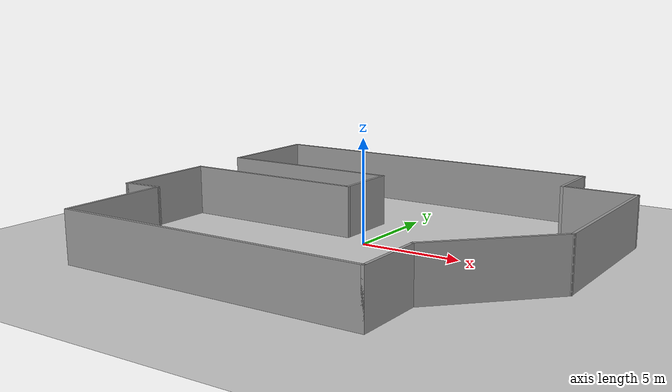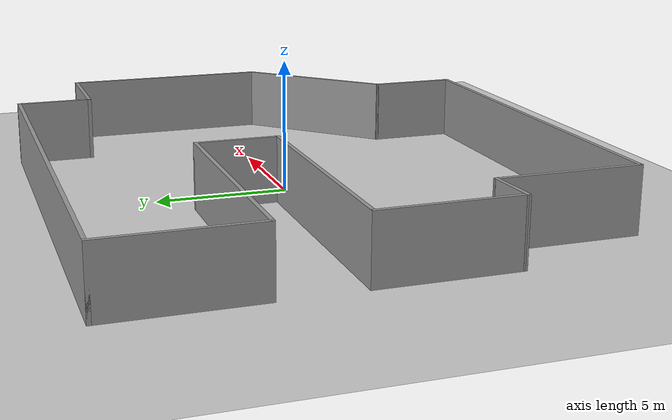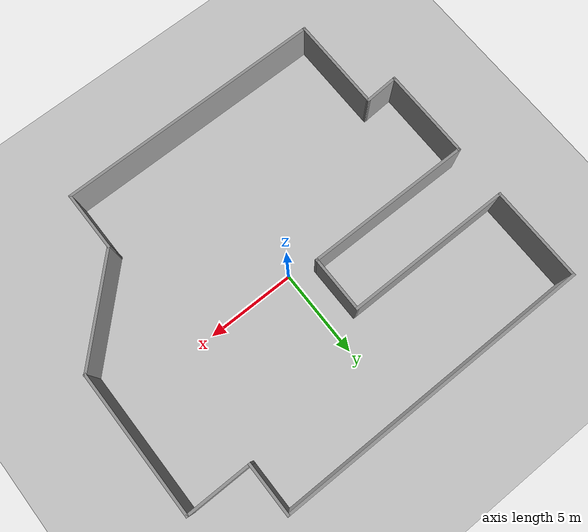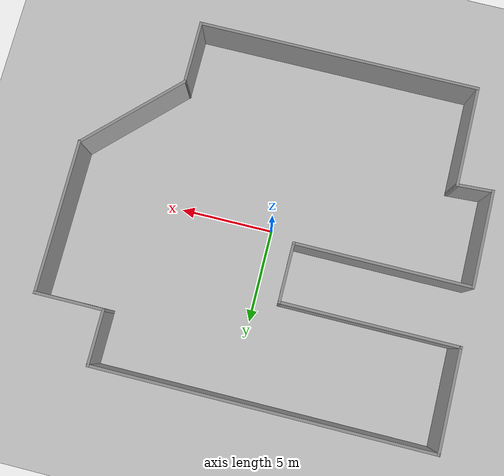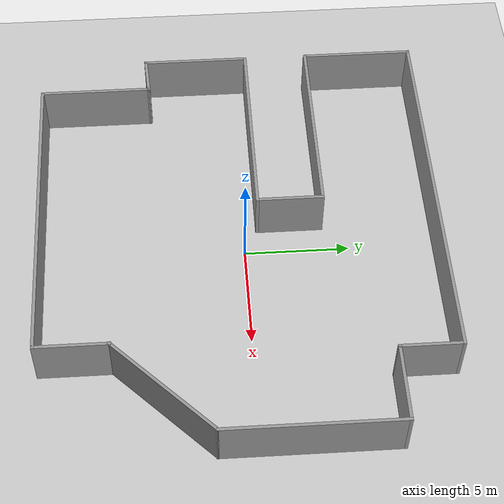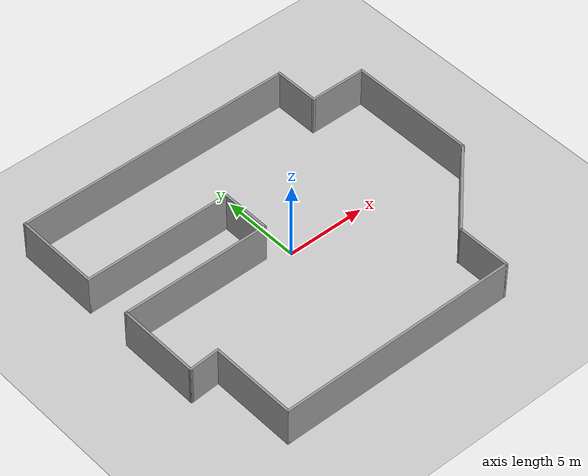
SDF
<sdf version="1.7">
 <world name="default">
  <light name="sun" type="directional">
   <pose>0 0 10 0 -0 0</pose>
   <diffuse>0.8 0.8 0.8 1</diffuse>
   <specular>0.2 0.2 0.2 1</specular>
   <attenuation>
    <range>1000</range>
    <constant>0.9</constant>
    <linear>0.01</linear>
    <quadratic>0.001</quadratic>
   </attenuation>
   <direction>-0.5 0.1 -0.9</direction>
   <spot><inner_angle>0</inner_angle><outer_angle>0</outer_angle><falloff>0</falloff></spot>
  </light>
  <model name="ground_plane">
   <static>1</static>
   <link name="link">
    <collision name="collision">
     <geometry><plane><normal>0 0 1</normal><size>100 100</size></plane></geometry>
     <surface>
      <contact><collide_bitmask>65535</collide_bitmask></contact>
      <friction><ode><mu>100</mu><mu2>50</mu2></ode></friction>
     </surface>
    </collision>
    <visual name="visual">
     <cast_shadows>0</cast_shadows>
     <geometry><plane><normal>0 0 1</normal><size>100 100</size></plane></geometry>
     <material>
      <script><uri>file://media/materials/scripts/gazebo.material</uri><name>Gazebo/Grey</name></script>
     </material>
    </visual>
   </link>
  </model>
  <gravity>0 0 -9.8</gravity>
  <magnetic_field>6e-06 2.3e-05 -4.2e-05</magnetic_field>
  <atmosphere type="adiabatic"/>
  <physics type="ode">
   <max_step_size>0.001</max_step_size>
   <real_time_factor>1</real_time_factor>
   <real_time_update_rate>1000</real_time_update_rate>
  </physics>
  <scene><ambient>0.4 0.4 0.4 1</ambient><background>0.7 0.7 0.7 1</background><shadows>1</shadows></scene>
  <spherical_coordinates>
   <surface_model>EARTH_WGS84</surface_model>
   <latitude_deg>0</latitude_deg>
   <longitude_deg>0</longitude_deg>
   <elevation>0</elevation>
   <heading_deg>0</heading_deg>
  </spherical_coordinates>
  <model name="FloorPlan">
   <pose>0.084688 -0.281728 0 0 -0 0</pose>
   <link name="Wall_0">
    <collision name="Wall_0_Collision">
     <geometry><box><size>5.5 0.15 2.5</size></box></geometry>
     <pose>0 0 1.25 0 -0 0</pose>
    </collision>
    <visual name="Wall_0_Visual">
     <pose>0 0 1.25 0 -0 0</pose>
     <geometry><box><size>5.5 0.15 2.5</size></box></geometry>
     <material>
      <script><uri>file://media/materials/scripts/gazebo.material</uri><name>Gazebo/Grey</name></script>
      <ambient>1 1 1 1</ambient>
     </material>
     <meta><layer>0</layer></meta>
    </visual>
    <pose>-8.87852 -6.72006 0 0 -0 -1.5708</pose>
   </link>
   <link name="Wall_1">
    <collision name="Wall_1_Collision">
     <geometry><box><size>15.25 0.15 2.5</size></box></geometry>
     <pose>0 0 1.25 0 -0 0</pose>
    </collision>
    <visual name="Wall_1_Visual">
     <pose>0 0 1.25 0 -0 0</pose>
     <geometry><box><size>15.25 0.15 2.5</size></box></geometry>
     <material>
      <script><uri>file://media/materials/scripts/gazebo.material</uri><name>Gazebo/Grey</name></script>
      <ambient>1 1 1 1</ambient>
     </material>
     <meta><layer>0</layer></meta>
    </visual>
    <pose>-1.32851 -9.39506 0 0 -0 0</pose>
   </link>
   <link name="Wall_10">
    <collision name="Wall_10_Collision">
     <geometry><box><size>3.25 0.15 2.5</size></box></geometry>
     <pose>0 0 1.25 0 -0 0</pose>
    </collision>
    <visual name="Wall_10_Visual">
     <pose>0 0 1.25 0 -0 0</pose>
     <geometry><box><size>3.25 0.15 2.5</size></box></geometry>
     <material>
      <script><uri>file://media/materials/scripts/gazebo.material</uri><name>Gazebo/Grey</name></script>
      <ambient>1 1 1 1</ambient>
     </material>
     <meta><layer>0</layer></meta>
    </visual>
    <pose>-1.38839 2.49506 0 0 -0 -1.5708</pose>
   </link>
   <link name="Wall_11">
    <collision name="Wall_11_Collision">
     <geometry><box><size>9.5 0.15 2.5</size></box></geometry>
     <pose>0 0 1.25 0 -0 0</pose>
    </collision>
    <visual name="Wall_11_Visual">
     <pose>0 0 1.25 0 -0 0</pose>
     <geometry><box><size>9.5 0.15 2.5</size></box></geometry>
     <material>
      <script><uri>file://media/materials/scripts/gazebo.material</uri><name>Gazebo/Grey</name></script>
      <ambient>1 1 1 1</ambient>
     </material>
     <meta><layer>0</layer></meta>
    </visual>
    <pose>-6.06339 0.945064 0 0 -0 3.14159</pose>
   </link>
   <link name="Wall_12">
    <collision name="Wall_12_Collision">
     <geometry><box><size>5.25 0.15 2.5</size></box></geometry>
     <pose>0 0 1.25 0 -0 0</pose>
    </collision>
    <visual name="Wall_12_Visual">
     <pose>0 0 1.25 0 -0 0</pose>
     <geometry><box><size>5.25 0.15 2.5</size></box></geometry>
     <material>
      <script><uri>file://media/materials/scripts/gazebo.material</uri><name>Gazebo/Grey</name></script>
      <ambient>1 1 1 1</ambient>
     </material>
     <meta><layer>0</layer></meta>
    </visual>
    <pose>-10.7384 -1.60494 0 0 -0 -1.5708</pose>
   </link>
   <link name="Wall_13">
    <collision name="Wall_13_Collision">
     <geometry><box><size>2.01311 0.15 2.5</size></box></geometry>
     <pose>0 0 1.25 0 -0 0</pose>
    </collision>
    <visual name="Wall_13_Visual">
     <pose>0 0 1.25 0 -0 0</pose>
     <geometry><box><size>2.01311 0.15 2.5</size></box></geometry>
     <material>
      <script><uri>file://media/materials/scripts/gazebo.material</uri><name>Gazebo/Grey</name></script>
      <ambient>1 1 1 1</ambient>
     </material>
     <meta><layer>0</layer></meta>
    </visual>
    <pose>-9.80845 -4.1 0 0 -0 0.059006</pose>
   </link>
   <link name="Wall_2">
    <collision name="Wall_2_Collision">
     <geometry><box><size>3.5 0.15 2.5</size></box></geometry>
     <pose>0 0 1.25 0 -0 0</pose>
    </collision>
    <visual name="Wall_2_Visual">
     <pose>0 0 1.25 0 -0 0</pose>
     <geometry><box><size>3.5 0.15 2.5</size></box></geometry>
     <material>
      <script><uri>file://media/materials/scripts/gazebo.material</uri><name>Gazebo/Grey</name></script>
      <ambient>1 1 1 1</ambient>
     </material>
     <meta><layer>0</layer></meta>
    </visual>
    <pose>6.22149 -7.72006 0 0 -0 1.5708</pose>
   </link>
   <link name="Wall_3">
    <collision name="Wall_3_Collision">
     <geometry><box><size>6.5 0.15 2.5</size></box></geometry>
     <pose>0 0 1.25 0 -0 0</pose>
    </collision>
    <visual name="Wall_3_Visual">
     <pose>0 0 1.25 0 -0 0</pose>
     <geometry><box><size>6.5 0.15 2.5</size></box></geometry>
     <material>
      <script><uri>file://media/materials/scripts/gazebo.material</uri><name>Gazebo/Grey</name></script>
      <ambient>1 1 1 1</ambient>
     </material>
     <meta><layer>0</layer></meta>
    </visual>
    <pose>8.46655 -3.8 0 0 -0 0.785398</pose>
   </link>
   <link name="Wall_4">
    <collision name="Wall_4_Collision">
     <geometry><box><size>8.25 0.15 2.5</size></box></geometry>
     <pose>0 0 1.25 0 -0 0</pose>
    </collision>
    <visual name="Wall_4_Visual">
     <pose>0 0 1.25 0 -0 0</pose>
     <geometry><box><size>8.25 0.15 2.5</size></box></geometry>
     <material>
      <script><uri>file://media/materials/scripts/gazebo.material</uri><name>Gazebo/Grey</name></script>
      <ambient>1 1 1 1</ambient>
     </material>
     <meta><layer>0</layer></meta>
    </visual>
    <pose>10.7116 2.49506 0 0 -0 1.5708</pose>
   </link>
   <link name="Wall_5">
    <collision name="Wall_5_Collision">
     <geometry><box><size>3.75 0.15 2.5</size></box></geometry>
     <pose>0 0 1.25 0 -0 0</pose>
    </collision>
    <visual name="Wall_5_Visual">
     <pose>0 0 1.25 0 -0 0</pose>
     <geometry><box><size>3.75 0.15 2.5</size></box></geometry>
     <material>
      <script><uri>file://media/materials/scripts/gazebo.material</uri><name>Gazebo/Grey</name></script>
      <ambient>1 1 1 1</ambient>
     </material>
     <meta><layer>0</layer></meta>
    </visual>
    <pose>8.91161 6.54506 0 0 -0 3.14159</pose>
   </link>
   <link name="Wall_6">
    <collision name="Wall_6_Collision">
     <geometry><box><size>3 0.15 2.5</size></box></geometry>
     <pose>0 0 1.25 0 -0 0</pose>
    </collision>
    <visual name="Wall_6_Visual">
     <pose>0 0 1.25 0 -0 0</pose>
     <geometry><box><size>3 0.15 2.5</size></box></geometry>
     <material>
      <script><uri>file://media/materials/scripts/gazebo.material</uri><name>Gazebo/Grey</name></script>
      <ambient>1 1 1 1</ambient>
     </material>
     <meta><layer>0</layer></meta>
    </visual>
    <pose>7.11161 7.97006 0 0 -0 1.5708</pose>
   </link>
   <link name="Wall_7">
    <collision name="Wall_7_Collision">
     <geometry><box><size>18 0.15 2.5</size></box></geometry>
     <pose>0 0 1.25 0 -0 0</pose>
    </collision>
    <visual name="Wall_7_Visual">
     <pose>0 0 1.25 0 -0 0</pose>
     <geometry><box><size>18 0.15 2.5</size></box></geometry>
     <material>
      <script><uri>file://media/materials/scripts/gazebo.material</uri><name>Gazebo/Grey</name></script>
      <ambient>1 1 1 1</ambient>
     </material>
     <meta><layer>0</layer></meta>
    </visual>
    <pose>-1.81339 9.39506 0 0 -0 3.14159</pose>
   </link>
   <link name="Wall_8">
    <collision name="Wall_8_Collision">
     <geometry><box><size>5.5 0.15 2.5</size></box></geometry>
     <pose>0 0 1.25 0 -0 0</pose>
    </collision>
    <visual name="Wall_8_Visual">
     <pose>0 0 1.25 0 -0 0</pose>
     <geometry><box><size>5.5 0.15 2.5</size></box></geometry>
     <material>
      <script><uri>file://media/materials/scripts/gazebo.material</uri><name>Gazebo/Grey</name></script>
      <ambient>1 1 1 1</ambient>
     </material>
     <meta><layer>0</layer></meta>
    </visual>
    <pose>-10.7384 6.72006 0 0 -0 -1.5708</pose>
   </link>
   <link name="Wall_9">
    <collision name="Wall_9_Collision">
     <geometry><box><size>9.5 0.15 2.5</size></box></geometry>
     <pose>0 0 1.25 0 -0 0</pose>
    </collision>
    <visual name="Wall_9_Visual">
     <pose>0 0 1.25 0 -0 0</pose>
     <geometry><box><size>9.5 0.15 2.5</size></box></geometry>
     <material>
      <script><uri>file://media/materials/scripts/gazebo.material</uri><name>Gazebo/Grey</name></script>
      <ambient>1 1 1 1</ambient>
     </material>
     <meta><layer>0</layer></meta>
    </visual>
    <pose>-6.06339 4.04506 0 0 -0 0</pose>
   </link>
   <static>1</static>
  </model>
 </world>
</sdf>
